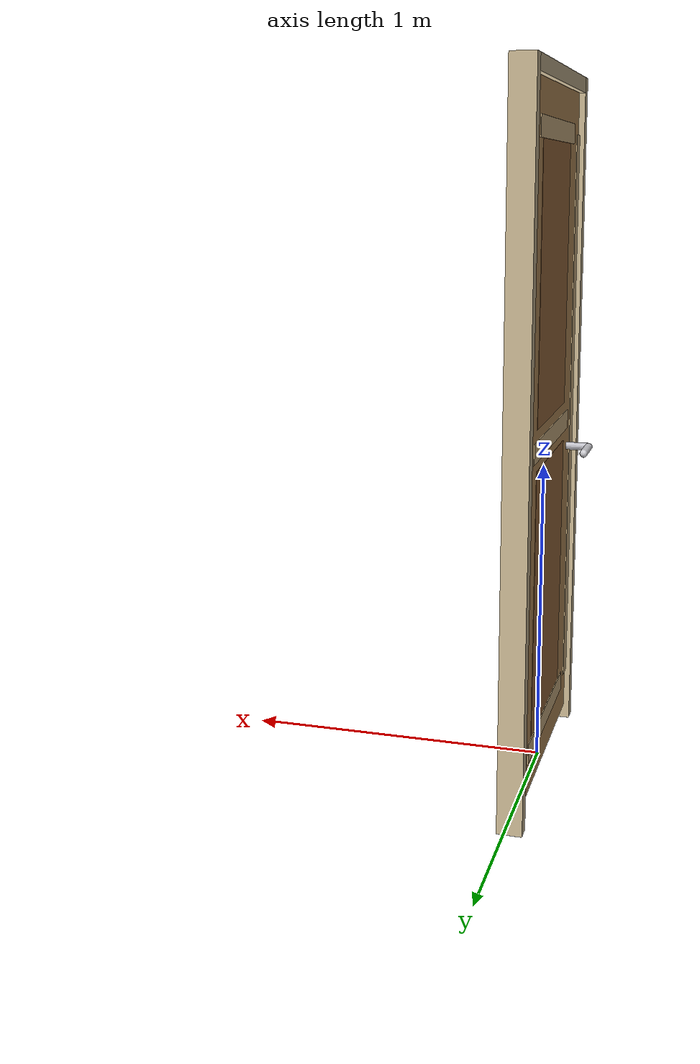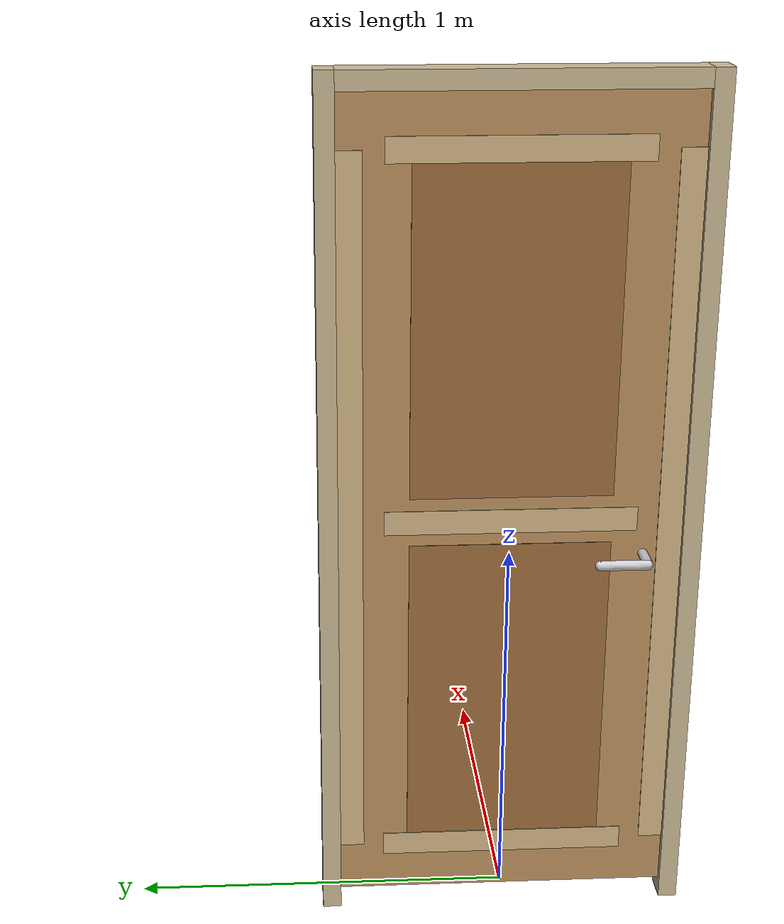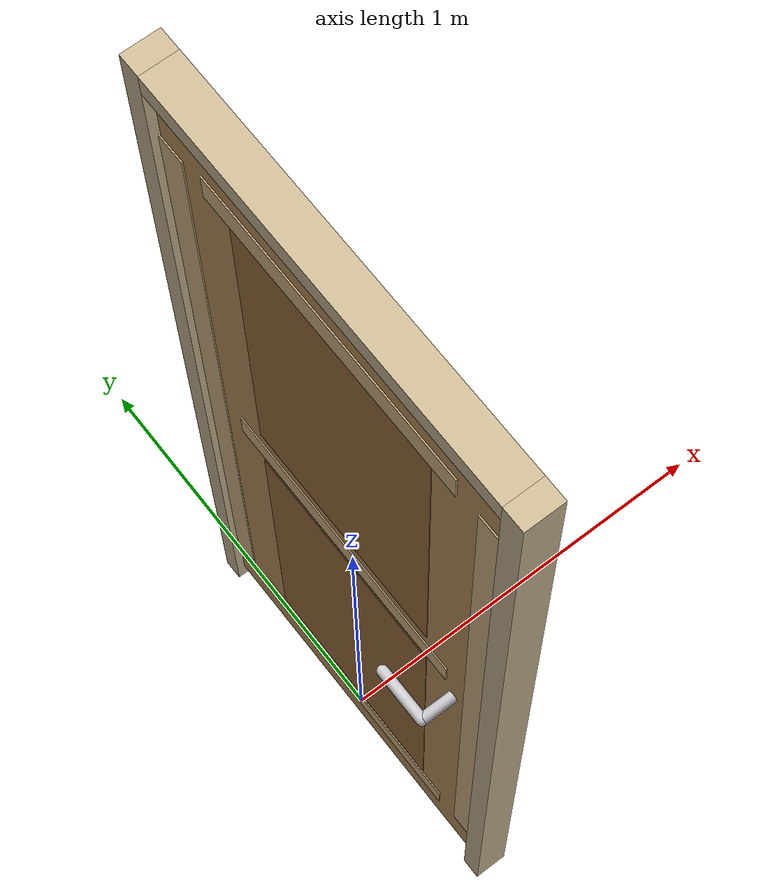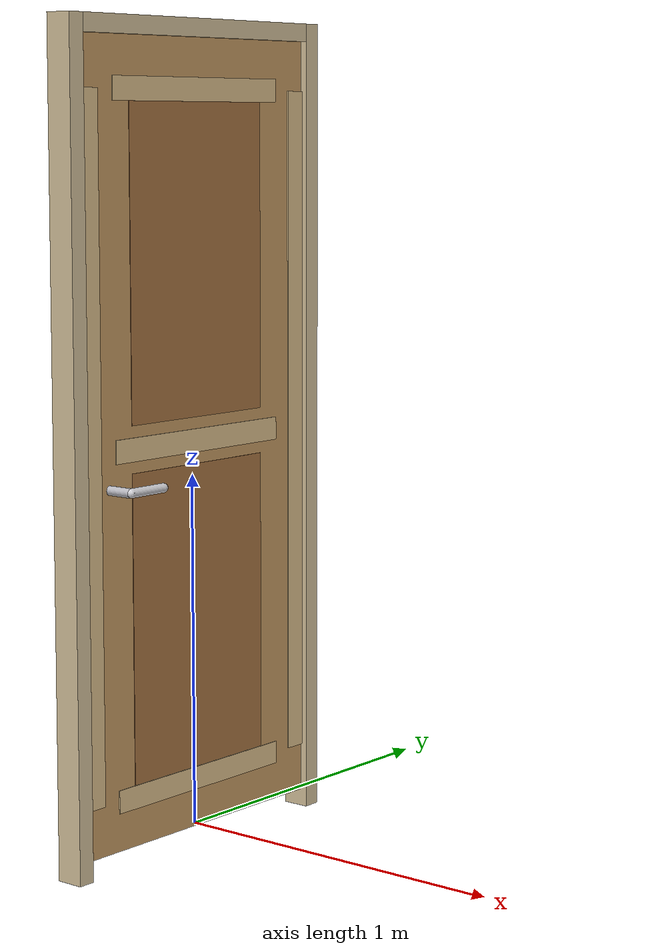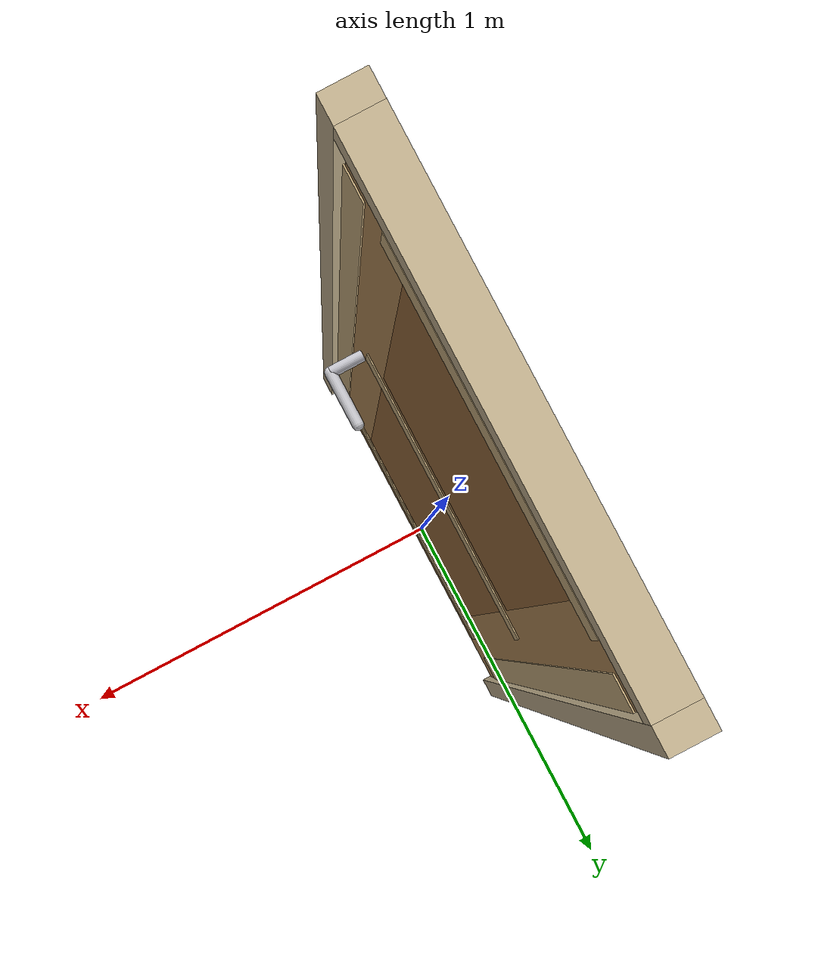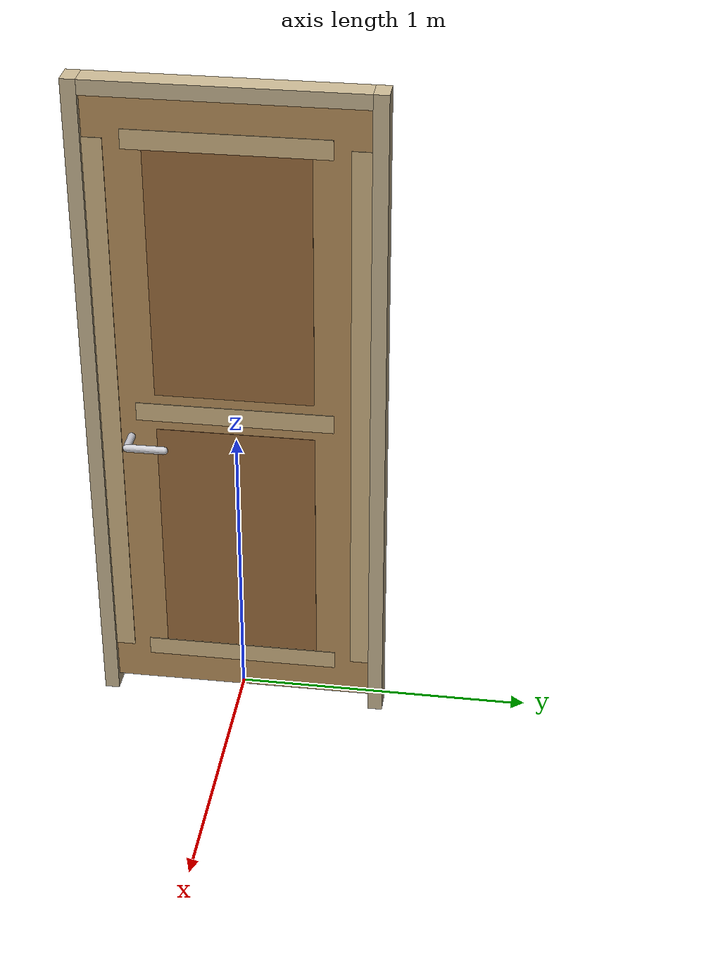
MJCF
<mujoco model="doordog_materialized_door">
  <compiler angle="radian" coordinate="local" />
  <option timestep="0.005" gravity="0 0 -9.81" />
  <default>
    <default class="door">
      <geom friction="1 0.005 0.0001" condim="4" density="0" />
    </default>
  </default>
  <worldbody>
    <body name="door_root" childclass="door">
      <geom name="door_frame_left" type="box" pos="0 0.475 1.1" size="0.04 0.025 1.15" rgba="0.79 0.72 0.58 1" />
      <geom name="door_frame_right" type="box" pos="0 -0.475 1.1" size="0.04 0.025 1.15" rgba="0.79 0.72 0.58 1" />
      <geom name="door_frame_top" type="box" pos="0 0 2.225" size="0.04 0.45 0.025" rgba="0.79 0.72 0.58 1" />
      <body name="door_panel" pos="0 0.45 0">
        <joint name="door_hinge" type="hinge" axis="0 0 1" range="0 2.61799387799" damping="0" frictionloss="0" limited="true" solreflimit="-10000 -100" />
        <inertial pos="0 -0.45 1.1" mass="100" diaginertia="47.0833333333 40.3466666667 6.76333333333" />
        <geom name="door_panel_collision" type="box" pos="0 -0.45 1.1" size="0.02 0.45 1.1" mass="0" rgba="0.73 0.57 0.36 1" />
        <body name="door_handle" pos="0 -0.8 1">
          <joint name="handle_hinge" type="hinge" axis="1 0 0" range="0 0.785398163397" damping="0" frictionloss="0" limited="true" solreflimit="-10000 -100" />
          <geom name="handle_axle" type="cylinder" pos="0 0 0" quat="0.707106781187 0 0.707106781187 0" size="0.013 0.0975" mass="0.2" rgba="0.75 0.75 0.78 1" />
          <site name="door_handle_center" pos="0 0 0" size="0.01" group="5" />
          <geom name="handle_lever_inside" type="capsule" pos="-0.0975 0.0625 0" quat="0.707106781187 0.707106781187 0 0" size="0.013 0.0625" mass="0.1" rgba="0.8 0.8 0.82 1" />
          <geom name="handle_lever_outside" type="capsule" pos="0.0975 0.0625 0" quat="0.707106781187 0.707106781187 0 0" size="0.013 0.0625" mass="0.1" rgba="0.8 0.8 0.82 1" />
          <site name="door_grasp_target" pos="-0.0975 0.0625 0" size="0.012" rgba="0 1 0 1" group="5" />
        </body>
        <site name="door_pregrasp_target" pos="-0.16 -0.8 1" size="0.012" group="5" />
        <geom name="door_inset_outside_0" type="box" pos="-0.0208 -0.45 0.60375" size="0.0008 0.265 0.43125" mass="0" contype="0" conaffinity="0" rgba="0.62 0.43 0.24 1" />
        <geom name="door_inset_outside_1" type="box" pos="-0.0208 -0.45 1.59625" size="0.0008 0.265 0.43125" mass="0" contype="0" conaffinity="0" rgba="0.62 0.43 0.24 1" />
        <geom name="door_panel_band_outside_left" type="box" pos="-0.0235 -0.8675 1.1" size="0.0015 0.0325 0.96" mass="0" contype="0" conaffinity="0" rgba="0.82 0.71 0.52 1" />
        <geom name="door_panel_band_outside_right" type="box" pos="-0.0235 -0.0325 1.1" size="0.0015 0.0325 0.96" mass="0" contype="0" conaffinity="0" rgba="0.82 0.71 0.52 1" />
        <geom name="door_panel_band_outside_bottom" type="box" pos="-0.0235 -0.45 0.14" size="0.0015 0.33 0.0325" mass="0" contype="0" conaffinity="0" rgba="0.82 0.71 0.52 1" />
        <geom name="door_panel_band_outside_middle" type="box" pos="-0.0235 -0.45 1.1" size="0.0015 0.33 0.0325" mass="0" contype="0" conaffinity="0" rgba="0.82 0.71 0.52 1" />
        <geom name="door_panel_band_outside_top" type="box" pos="-0.0235 -0.45 2.06" size="0.0015 0.33 0.0325" mass="0" contype="0" conaffinity="0" rgba="0.82 0.71 0.52 1" />
        <geom name="door_inset_inside_0" type="box" pos="0.0208 -0.45 0.60375" size="0.0008 0.265 0.43125" mass="0" contype="0" conaffinity="0" rgba="0.62 0.43 0.24 1" />
        <geom name="door_inset_inside_1" type="box" pos="0.0208 -0.45 1.59625" size="0.0008 0.265 0.43125" mass="0" contype="0" conaffinity="0" rgba="0.62 0.43 0.24 1" />
        <geom name="door_panel_band_inside_left" type="box" pos="0.0235 -0.8675 1.1" size="0.0015 0.0325 0.96" mass="0" contype="0" conaffinity="0" rgba="0.82 0.71 0.52 1" />
        <geom name="door_panel_band_inside_right" type="box" pos="0.0235 -0.0325 1.1" size="0.0015 0.0325 0.96" mass="0" contype="0" conaffinity="0" rgba="0.82 0.71 0.52 1" />
        <geom name="door_panel_band_inside_bottom" type="box" pos="0.0235 -0.45 0.14" size="0.0015 0.33 0.0325" mass="0" contype="0" conaffinity="0" rgba="0.82 0.71 0.52 1" />
        <geom name="door_panel_band_inside_middle" type="box" pos="0.0235 -0.45 1.1" size="0.0015 0.33 0.0325" mass="0" contype="0" conaffinity="0" rgba="0.82 0.71 0.52 1" />
        <geom name="door_panel_band_inside_top" type="box" pos="0.0235 -0.45 2.06" size="0.0015 0.33 0.0325" mass="0" contype="0" conaffinity="0" rgba="0.82 0.71 0.52 1" />
      </body>
      <site name="door_hinge_axis" pos="0 0.45 1.1" size="0.01 1.1" type="cylinder" group="5" />
      <site name="door_passage_center" pos="0 0 1.1" size="0.015" group="5" />
      <site name="door_goal" pos="1 0 0" size="0.015" group="5" />
      <camera name="handle_outside_closeup" pos="-0.45 -0.35 1" xyaxes="0 -1 0 0 0 1" fovy="32" />
      <camera name="handle_inside_closeup" pos="0.45 -0.35 1" xyaxes="0 1 0 0 0 1" fovy="32" />
    </body>
  </worldbody>
  <contact>
    <exclude name="exclude_panel_handle_self_collision" body1="door_panel" body2="door_handle" />
    <exclude name="exclude_frame_panel_self_collision" body1="door_root" body2="door_panel" />
    <exclude name="exclude_frame_handle_self_collision" body1="door_root" body2="door_handle" />
  </contact>
  <equality />
  <actuator>
    <position name="door_hinge_capped_position" joint="door_hinge" kp="2" kv="50" ctrlrange="-0.174532925199 2.61799387799" ctrllimited="true" forcerange="-4.5 4.5" forcelimited="true" />
    <position name="handle_capped_position" joint="handle_hinge" kp="50" kv="0.5" ctrlrange="-0.261799387799 0.785398163397" ctrllimited="true" forcerange="-2 2" forcelimited="true" />
  </actuator>
  <keyframe>
    <key name="door_closed" qpos="0 0" ctrl="-0.174532925199 -0.261799387799" />
  </keyframe>
</mujoco>
